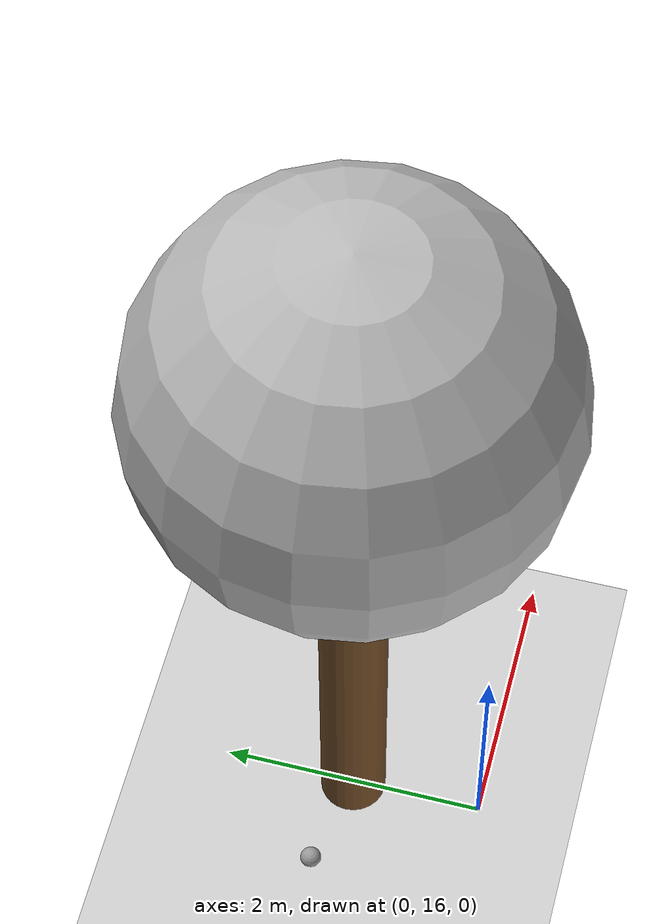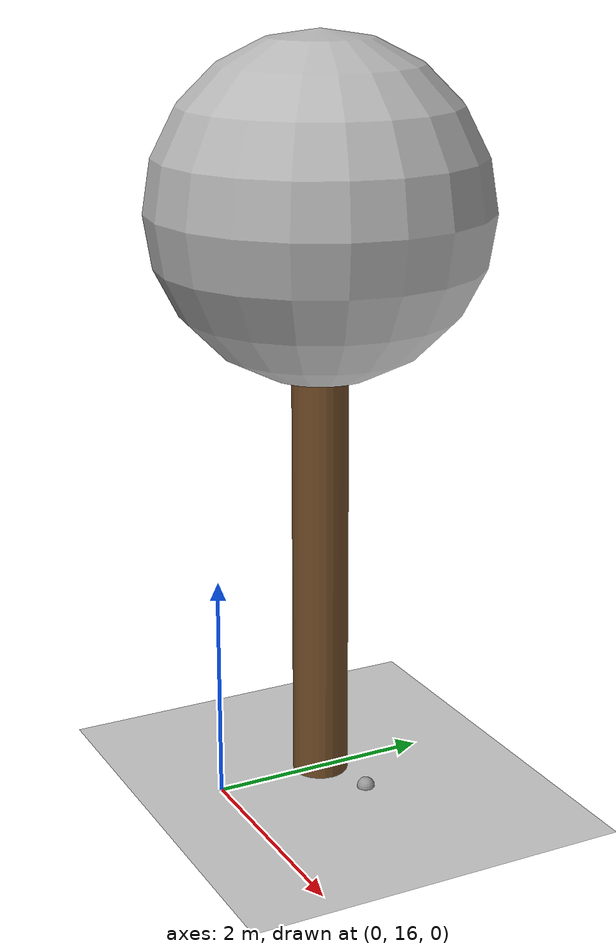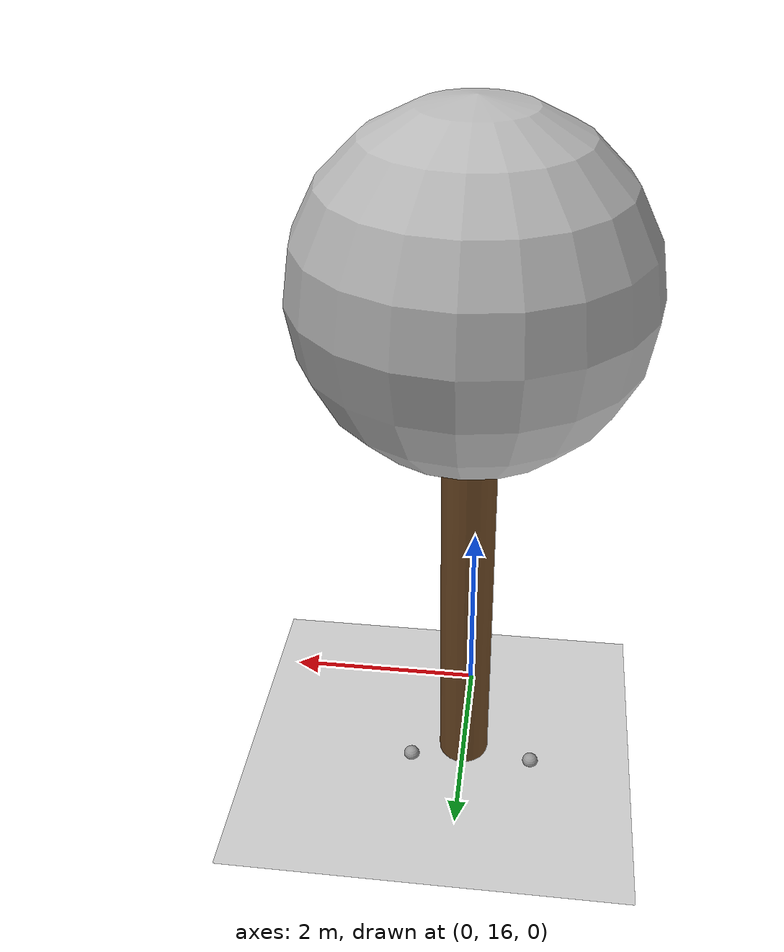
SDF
<sdf version="1.7">
 <world name="default">
  <model name="ground_plane">
   <static>1</static>
   <link name="link">
    <collision name="collision">
     <geometry><plane><normal>0 0 1</normal><size>100 100</size></plane></geometry>
     <surface>
      <contact><collide_bitmask>65535</collide_bitmask></contact>
      <friction><ode><mu>100</mu><mu2>50</mu2></ode></friction>
     </surface>
    </collision>
    <visual name="visual">
     <cast_shadows>0</cast_shadows>
     <geometry><plane><normal>0 0 1</normal><size>100 100</size></plane></geometry>
     <material>
      <script><uri>file://media/materials/scripts/gazebo.material</uri><name>Gazebo/Grey</name></script>
     </material>
    </visual>
   </link>
  </model>
  <model name="tree_simple_55">
   <static>1</static>
   <link name="link">
    <pose>0 0 0.1 0 -0 0</pose>
    <inertial>
     <mass>666</mass>
     <inertia>
      <ixx>0.0861167</ixx>
      <ixy>0</ixy>
      <ixz>0</ixz>
      <iyy>0.0861167</iyy>
      <iyz>0</iyz>
      <izz>0.0861167</izz>
     </inertia>
    </inertial>
    <collision name="collision_trunk">
     <pose>0 0 2 0 -0 0</pose>
     <geometry><cylinder><radius>0.25</radius><length>4</length></cylinder></geometry>
     <surface>
      <contact>
       <poissons_ratio>0.347</poissons_ratio>
       <elastic_modulus>8.8e+09</elastic_modulus>
       <ode><kp>100000</kp><kd>100</kd><max_vel>100</max_vel><min_depth>0.001</min_depth></ode>
      </contact>
      <friction>
       <torsional>
        <coefficient>1</coefficient>
        <use_patch_radius>0</use_patch_radius>
        <surface_radius>0.01</surface_radius>
       </torsional>
      </friction>
     </surface>
    </collision>
    <collision name="collision_treetop">
     <pose>0 0 5.2 0 -0 0</pose>
     <geometry><sphere><radius>1.5</radius></sphere></geometry>
     <surface>
      <contact>
       <poissons_ratio>0.347</poissons_ratio>
       <elastic_modulus>8.8e+09</elastic_modulus>
       <ode><kp>100000</kp><kd>100</kd><max_vel>100</max_vel><min_depth>0.001</min_depth></ode>
      </contact>
      <friction>
       <torsional>
        <coefficient>1</coefficient>
        <use_patch_radius>0</use_patch_radius>
        <surface_radius>0.01</surface_radius>
       </torsional>
      </friction>
     </surface>
    </collision>
    <visual name="trunk">
     <pose>0 0 2 0 -0 0</pose>
     <geometry><cylinder><radius>0.25</radius><length>4</length></cylinder></geometry>
     <material>
      <script>
       <uri>model://tree_simple/scripts</uri>
       <uri>model://tree_simple/materials/textures</uri>
       <name>TreeSimple/Trunk</name>
      </script>
     </material>
    </visual>
    <visual name="treetop">
     <pose>0 0 5.2 0 -0 0</pose>
     <geometry><sphere><radius>1.5</radius></sphere></geometry>
     <material>
      <script>
       <uri>model://tree_simple/scripts</uri>
       <uri>model://tree_simple/materials/textures</uri>
       <name>TreeSimple/Treetop</name>
      </script>
     </material>
    </visual>
   </link>
   <pose>0 17 -0.1 0 -0 0</pose>
  </model>
  <model name="seed_black_40">
   <link name="link">
    <inertial>
     <mass>1</mass>
     <inertia><ixx>0.1</ixx><ixy>0</ixy><ixz>0</ixz><iyy>0.1</iyy><iyz>0</iyz><izz>0.1</izz></inertia>
    </inertial>
    <visual name="visual">
     <geometry><sphere><radius>0.08</radius></sphere></geometry>
     <material>
      <script><name>Gazebo/Grey</name><uri>file://media/materials/scripts/gazebo.material</uri></script>
      <shader type="pixel"><normal_map>__default__</normal_map></shader>
      <ambient>0 0 0 1</ambient>
      <diffuse>0.7 0.7 0.7 1</diffuse>
      <specular>0.01 0.01 0.01 1</specular>
      <emissive>0 0 0 1</emissive>
     </material>
    </visual>
    <collision name="collision">
     <geometry><sphere><radius>0.0005</radius></sphere></geometry>
     <surface>
      <friction>
       <ode><mu>1</mu><mu2>1</mu2><fdir1>0 0 0</fdir1><slip1>0</slip1><slip2>0</slip2></ode>
       <torsional>
        <coefficient>1</coefficient>
        <patch_radius>0</patch_radius>
        <surface_radius>0</surface_radius>
        <use_patch_radius>1</use_patch_radius>
        <ode><slip>0</slip></ode>
       </torsional>
      </friction>
      <bounce><restitution_coefficient>0</restitution_coefficient><threshold>1e+06</threshold></bounce>
      <contact>
       <collide_without_contact>0</collide_without_contact>
       <collide_without_contact_bitmask>1</collide_without_contact_bitmask>
       <collide_bitmask>1</collide_bitmask>
       <ode>
        <soft_cfm>0</soft_cfm>
        <soft_erp>0.2</soft_erp>
        <kp>1e+13</kp>
        <kd>1</kd>
        <max_vel>0.01</max_vel>
        <min_depth>0</min_depth>
       </ode>
       <bullet>
        <split_impulse>1</split_impulse>
        <split_impulse_penetration_threshold>-0.01</split_impulse_penetration_threshold>
        <soft_cfm>0</soft_cfm>
        <soft_erp>0.2</soft_erp>
        <kp>1e+13</kp>
        <kd>1</kd>
       </bullet>
      </contact>
     </surface>
    </collision>
   </link>
   <static>0</static>
   <pose>-0.710084 17.1571 0.0005 0 -0 0</pose>
  </model>
  <model name="seed_black_42">
   <link name="link">
    <inertial>
     <mass>1</mass>
     <inertia><ixx>0.1</ixx><ixy>0</ixy><ixz>0</ixz><iyy>0.1</iyy><iyz>0</iyz><izz>0.1</izz></inertia>
    </inertial>
    <visual name="visual">
     <geometry><sphere><radius>0.08</radius></sphere></geometry>
     <material>
      <script><name>Gazebo/Grey</name><uri>file://media/materials/scripts/gazebo.material</uri></script>
      <shader type="pixel"><normal_map>__default__</normal_map></shader>
      <ambient>0 0 0 1</ambient>
      <diffuse>0.7 0.7 0.7 1</diffuse>
      <specular>0.01 0.01 0.01 1</specular>
      <emissive>0 0 0 1</emissive>
     </material>
    </visual>
    <collision name="collision">
     <geometry><sphere><radius>0.0005</radius></sphere></geometry>
     <surface>
      <friction>
       <ode><mu>1</mu><mu2>1</mu2><fdir1>0 0 0</fdir1><slip1>0</slip1><slip2>0</slip2></ode>
       <torsional>
        <coefficient>1</coefficient>
        <patch_radius>0</patch_radius>
        <surface_radius>0</surface_radius>
        <use_patch_radius>1</use_patch_radius>
        <ode><slip>0</slip></ode>
       </torsional>
      </friction>
      <bounce><restitution_coefficient>0</restitution_coefficient><threshold>1e+06</threshold></bounce>
      <contact>
       <collide_without_contact>0</collide_without_contact>
       <collide_without_contact_bitmask>1</collide_without_contact_bitmask>
       <collide_bitmask>1</collide_bitmask>
       <ode>
        <soft_cfm>0</soft_cfm>
        <soft_erp>0.2</soft_erp>
        <kp>1e+13</kp>
        <kd>1</kd>
        <max_vel>0.01</max_vel>
        <min_depth>0</min_depth>
       </ode>
       <bullet>
        <split_impulse>1</split_impulse>
        <split_impulse_penetration_threshold>-0.01</split_impulse_penetration_threshold>
        <soft_cfm>0</soft_cfm>
        <soft_erp>0.2</soft_erp>
        <kp>1e+13</kp>
        <kd>1</kd>
       </bullet>
      </contact>
     </surface>
    </collision>
   </link>
   <static>0</static>
   <pose>0.528098 17.1945 0.0005 0 -0 0</pose>
  </model>
 </world>
</sdf>
